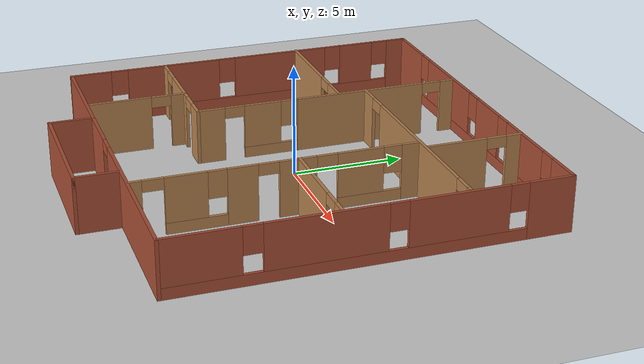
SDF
<sdf version="1.7">
 <world name="default">
  <model name="ground_plane">
   <static>1</static>
   <link name="link">
    <collision name="collision">
     <geometry><plane><normal>0 0 1</normal><size>100 100</size></plane></geometry>
     <surface>
      <contact><collide_bitmask>65535</collide_bitmask></contact>
      <friction><ode><mu>100</mu><mu2>50</mu2></ode></friction>
     </surface>
    </collision>
    <visual name="visual">
     <cast_shadows>0</cast_shadows>
     <geometry><plane><normal>0 0 1</normal><size>100 100</size></plane></geometry>
     <material>
      <script><uri>file://media/materials/scripts/gazebo.material</uri><name>Gazebo/Grey</name></script>
     </material>
    </visual>
   </link>
  </model>
  <model name="floor_world">
   <pose>0.06506 -0.674263 0 0 -0 0</pose>
   <link name="Wall_10">
    <collision name="Wall_10_Collision">
     <geometry><box><size>2 0.15 2.5</size></box></geometry>
     <pose>0 0 1.25 0 -0 0</pose>
    </collision>
    <visual name="Wall_10_Visual">
     <pose>0 0 1.25 0 -0 0</pose>
     <geometry><box><size>2 0.15 2.5</size></box></geometry>
     <material>
      <script><uri>file://media/materials/scripts/gazebo.material</uri><name>Gazebo/Bricks</name></script>
      <ambient>1 1 1 1</ambient>
     </material>
     <meta><layer>0</layer></meta>
    </visual>
    <pose>-3.28762 -8.41095 0 0 -0 -1.5708</pose>
   </link>
   <link name="Wall_11">
    <collision name="Wall_11_Collision">
     <geometry><box><size>6 0.15 2.5</size></box></geometry>
     <pose>0 0 1.25 0 -0 0</pose>
    </collision>
    <visual name="Wall_11_Visual">
     <pose>0 0 1.25 0 -0 0</pose>
     <geometry><box><size>6 0.15 2.5</size></box></geometry>
     <material>
      <script><uri>file://media/materials/scripts/gazebo.material</uri><name>Gazebo/Bricks</name></script>
      <ambient>1 1 1 1</ambient>
     </material>
     <meta><layer>0</layer></meta>
    </visual>
    <pose>-0.362616 -9.37641 0 0 -0 0</pose>
   </link>
   <link name="Wall_12">
    <collision name="Wall_12_Collision">
     <geometry><box><size>1.89729 0.15 2.5</size></box></geometry>
     <pose>0 0 1.25 0 -0 0</pose>
    </collision>
    <visual name="Wall_12_Visual">
     <pose>0 0 1.25 0 -0 0</pose>
     <geometry><box><size>1.89729 0.15 2.5</size></box></geometry>
     <material>
      <script><uri>file://media/materials/scripts/gazebo.material</uri><name>Gazebo/Bricks</name></script>
      <ambient>1 1 1 1</ambient>
     </material>
     <meta><layer>0</layer></meta>
    </visual>
    <pose>2.56238 -8.46231 0 0 -0 1.5708</pose>
   </link>
   <link name="Wall_14">
    <pose>-2.51896 3.19449 0 0 -0 -1.5708</pose>
    <visual name="Wall_14_Visual_0">
     <pose>-5.85089 0 1.25 0 -0 0</pose>
     <geometry><box><size>0.798212 0.15 2.5</size></box></geometry>
     <material>
      <script><uri>file://media/materials/scripts/gazebo.material</uri><name>Gazebo/Wood</name></script>
      <ambient>1 1 1 1</ambient>
     </material>
     <meta><layer>0</layer></meta>
    </visual>
    <collision name="Wall_14_Collision_0">
     <geometry><box><size>0.798212 0.15 2.5</size></box></geometry>
     <pose>-5.85089 0 1.25 0 -0 0</pose>
    </collision>
    <visual name="Wall_14_Visual_1">
     <pose>-1.50357 0 1.25 0 -0 0</pose>
     <geometry><box><size>6.09644 0.15 2.5</size></box></geometry>
     <material>
      <script><uri>file://media/materials/scripts/gazebo.material</uri><name>Gazebo/Wood</name></script>
      <ambient>1 1 1 1</ambient>
     </material>
     <meta><layer>0</layer></meta>
    </visual>
    <collision name="Wall_14_Collision_1">
     <geometry><box><size>6.09644 0.15 2.5</size></box></geometry>
     <pose>-1.50357 0 1.25 0 -0 0</pose>
    </collision>
    <visual name="Wall_14_Visual_2">
     <pose>5.5981 0 1.25 0 -0 0</pose>
     <geometry><box><size>1.3038 0.15 2.5</size></box></geometry>
     <material>
      <script><uri>file://media/materials/scripts/gazebo.material</uri><name>Gazebo/Wood</name></script>
      <ambient>1 1 1 1</ambient>
     </material>
     <meta><layer>0</layer></meta>
    </visual>
    <collision name="Wall_14_Collision_2">
     <geometry><box><size>1.3038 0.15 2.5</size></box></geometry>
     <pose>5.5981 0 1.25 0 -0 0</pose>
    </collision>
    <visual name="Wall_14_Visual_3">
     <pose>2.79542 0 0.25 0 -0 0</pose>
     <geometry><box><size>2.50155 0.15 0.5</size></box></geometry>
     <material>
      <script><uri>file://media/materials/scripts/gazebo.material</uri><name>Gazebo/Wood</name></script>
      <ambient>1 1 1 1</ambient>
     </material>
     <meta><layer>0</layer></meta>
    </visual>
    <collision name="Wall_14_Collision_3">
     <geometry><box><size>2.50155 0.15 0.5</size></box></geometry>
     <pose>2.79542 0 0.25 0 -0 0</pose>
    </collision>
    <visual name="Wall_14_Visual_4">
     <pose>3.19543 0 1.5 0 -0 0</pose>
     <geometry><box><size>1.70155 0.15 2</size></box></geometry>
     <material>
      <script><uri>file://media/materials/scripts/gazebo.material</uri><name>Gazebo/Wood</name></script>
      <ambient>1 1 1 1</ambient>
     </material>
     <meta><layer>0</layer></meta>
    </visual>
    <collision name="Wall_14_Collision_4">
     <geometry><box><size>1.70155 0.15 2</size></box></geometry>
     <pose>3.19543 0 1.5 0 -0 0</pose>
    </collision>
    <visual name="Wall_14_Visual_5">
     <pose>1.94465 0 1.9 0 -0 0</pose>
     <geometry><box><size>0.8 0.15 1.2</size></box></geometry>
     <material>
      <script><uri>file://media/materials/scripts/gazebo.material</uri><name>Gazebo/Wood</name></script>
      <ambient>1 1 1 1</ambient>
     </material>
     <meta><layer>0</layer></meta>
    </visual>
    <collision name="Wall_14_Collision_5">
     <geometry><box><size>0.8 0.15 1.2</size></box></geometry>
     <pose>1.94465 0 1.9 0 -0 0</pose>
    </collision>
    <visual name="Wall_14_Visual_6">
     <pose>-5.00179 0 2.25 0 -0 0</pose>
     <geometry><box><size>0.9 0.15 0.5</size></box></geometry>
     <material>
      <script><uri>file://media/materials/scripts/gazebo.material</uri><name>Gazebo/Wood</name></script>
      <ambient>1 1 1 1</ambient>
     </material>
     <meta><layer>0</layer></meta>
    </visual>
    <collision name="Wall_14_Collision_6">
     <geometry><box><size>0.9 0.15 0.5</size></box></geometry>
     <pose>-5.00179 0 2.25 0 -0 0</pose>
    </collision>
    <visual name="Wall_14_Visual_7">
     <pose>4.4962 0 2.25 0 -0 0</pose>
     <geometry><box><size>0.9 0.15 0.5</size></box></geometry>
     <material>
      <script><uri>file://media/materials/scripts/gazebo.material</uri><name>Gazebo/Wood</name></script>
      <ambient>1 1 1 1</ambient>
     </material>
     <meta><layer>0</layer></meta>
    </visual>
    <collision name="Wall_14_Collision_7">
     <geometry><box><size>0.9 0.15 0.5</size></box></geometry>
     <pose>4.4962 0 2.25 0 -0 0</pose>
    </collision>
   </link>
   <link name="Wall_15">
    <pose>-5.56896 -2.98051 0 0 -0 3.14159</pose>
    <visual name="Wall_15_Visual_0">
     <pose>-2.61101 0 1.25 0 -0 0</pose>
     <geometry><box><size>1.02798 0.15 2.5</size></box></geometry>
     <material>
      <script><uri>file://media/materials/scripts/gazebo.material</uri><name>Gazebo/Wood</name></script>
      <ambient>1 1 1 1</ambient>
     </material>
     <meta><layer>0</layer></meta>
    </visual>
    <collision name="Wall_15_Collision_0">
     <geometry><box><size>1.02798 0.15 2.5</size></box></geometry>
     <pose>-2.61101 0 1.25 0 -0 0</pose>
    </collision>
    <visual name="Wall_15_Visual_1">
     <pose>0.099053 0 1.25 0 -0 0</pose>
     <geometry><box><size>2.59214 0.15 2.5</size></box></geometry>
     <material>
      <script><uri>file://media/materials/scripts/gazebo.material</uri><name>Gazebo/Wood</name></script>
      <ambient>1 1 1 1</ambient>
     </material>
     <meta><layer>0</layer></meta>
    </visual>
    <collision name="Wall_15_Collision_1">
     <geometry><box><size>2.59214 0.15 2.5</size></box></geometry>
     <pose>0.099053 0 1.25 0 -0 0</pose>
    </collision>
    <visual name="Wall_15_Visual_2">
     <pose>2.71006 0 1.25 0 -0 0</pose>
     <geometry><box><size>0.829875 0.15 2.5</size></box></geometry>
     <material>
      <script><uri>file://media/materials/scripts/gazebo.material</uri><name>Gazebo/Wood</name></script>
      <ambient>1 1 1 1</ambient>
     </material>
     <meta><layer>0</layer></meta>
    </visual>
    <collision name="Wall_15_Collision_2">
     <geometry><box><size>0.829875 0.15 2.5</size></box></geometry>
     <pose>2.71006 0 1.25 0 -0 0</pose>
    </collision>
    <visual name="Wall_15_Visual_3">
     <pose>-1.64702 0 2.25 0 -0 0</pose>
     <geometry><box><size>0.9 0.15 0.5</size></box></geometry>
     <material>
      <script><uri>file://media/materials/scripts/gazebo.material</uri><name>Gazebo/Wood</name></script>
      <ambient>1 1 1 1</ambient>
     </material>
     <meta><layer>0</layer></meta>
    </visual>
    <collision name="Wall_15_Collision_3">
     <geometry><box><size>0.9 0.15 0.5</size></box></geometry>
     <pose>-1.64702 0 2.25 0 -0 0</pose>
    </collision>
    <visual name="Wall_15_Visual_4">
     <pose>1.84512 0 2.25 0 -0 0</pose>
     <geometry><box><size>0.9 0.15 0.5</size></box></geometry>
     <material>
      <script><uri>file://media/materials/scripts/gazebo.material</uri><name>Gazebo/Wood</name></script>
      <ambient>1 1 1 1</ambient>
     </material>
     <meta><layer>0</layer></meta>
    </visual>
    <collision name="Wall_15_Collision_4">
     <geometry><box><size>0.9 0.15 0.5</size></box></geometry>
     <pose>1.84512 0 2.25 0 -0 0</pose>
    </collision>
   </link>
   <link name="Wall_17">
    <pose>2.99058 4.95983 0 0 -0 0</pose>
    <visual name="Wall_17_Visual_0">
     <pose>-5.05152 0 1.25 0 -0 0</pose>
     <geometry><box><size>1.14696 0.15 2.5</size></box></geometry>
     <material>
      <script><uri>file://media/materials/scripts/gazebo.material</uri><name>Gazebo/Wood</name></script>
      <ambient>1 1 1 1</ambient>
     </material>
     <meta><layer>0</layer></meta>
    </visual>
    <collision name="Wall_17_Collision_0">
     <geometry><box><size>1.14696 0.15 2.5</size></box></geometry>
     <pose>-5.05152 0 1.25 0 -0 0</pose>
    </collision>
    <visual name="Wall_17_Visual_1">
     <pose>0.449976 0 1.25 0 -0 0</pose>
     <geometry><box><size>8.05604 0.15 2.5</size></box></geometry>
     <material>
      <script><uri>file://media/materials/scripts/gazebo.material</uri><name>Gazebo/Wood</name></script>
      <ambient>1 1 1 1</ambient>
     </material>
     <meta><layer>0</layer></meta>
    </visual>
    <collision name="Wall_17_Collision_1">
     <geometry><box><size>8.05604 0.15 2.5</size></box></geometry>
     <pose>0.449976 0 1.25 0 -0 0</pose>
    </collision>
    <visual name="Wall_17_Visual_2">
     <pose>5.5015 0 1.25 0 -0 0</pose>
     <geometry><box><size>0.247005 0.15 2.5</size></box></geometry>
     <material>
      <script><uri>file://media/materials/scripts/gazebo.material</uri><name>Gazebo/Wood</name></script>
      <ambient>1 1 1 1</ambient>
     </material>
     <meta><layer>0</layer></meta>
    </visual>
    <collision name="Wall_17_Collision_2">
     <geometry><box><size>0.247005 0.15 2.5</size></box></geometry>
     <pose>5.5015 0 1.25 0 -0 0</pose>
    </collision>
    <visual name="Wall_17_Visual_3">
     <pose>-4.02804 0 2.25 0 -0 0</pose>
     <geometry><box><size>0.9 0.15 0.5</size></box></geometry>
     <material>
      <script><uri>file://media/materials/scripts/gazebo.material</uri><name>Gazebo/Wood</name></script>
      <ambient>1 1 1 1</ambient>
     </material>
     <meta><layer>0</layer></meta>
    </visual>
    <collision name="Wall_17_Collision_3">
     <geometry><box><size>0.9 0.15 0.5</size></box></geometry>
     <pose>-4.02804 0 2.25 0 -0 0</pose>
    </collision>
    <visual name="Wall_17_Visual_4">
     <pose>4.928 0 2.25 0 -0 0</pose>
     <geometry><box><size>0.9 0.15 0.5</size></box></geometry>
     <material>
      <script><uri>file://media/materials/scripts/gazebo.material</uri><name>Gazebo/Wood</name></script>
      <ambient>1 1 1 1</ambient>
     </material>
     <meta><layer>0</layer></meta>
    </visual>
    <collision name="Wall_17_Collision_4">
     <geometry><box><size>0.9 0.15 0.5</size></box></geometry>
     <pose>4.928 0 2.25 0 -0 0</pose>
    </collision>
   </link>
   <link name="Wall_19">
    <pose>3.7112 -1.21517 0 0 -0 -1.5708</pose>
    <visual name="Wall_19_Visual_0">
     <pose>-5.79039 0 1.25 0 -0 0</pose>
     <geometry><box><size>0.919224 0.15 2.5</size></box></geometry>
     <material>
      <script><uri>file://media/materials/scripts/gazebo.material</uri><name>Gazebo/Wood</name></script>
      <ambient>1 1 1 1</ambient>
     </material>
     <meta><layer>0</layer></meta>
    </visual>
    <collision name="Wall_19_Collision_0">
     <geometry><box><size>0.919224 0.15 2.5</size></box></geometry>
     <pose>-5.79039 0 1.25 0 -0 0</pose>
    </collision>
    <visual name="Wall_19_Visual_1">
     <pose>-0.794408 0 1.25 0 -0 0</pose>
     <geometry><box><size>1.60825 0.15 2.5</size></box></geometry>
     <material>
      <script><uri>file://media/materials/scripts/gazebo.material</uri><name>Gazebo/Wood</name></script>
      <ambient>1 1 1 1</ambient>
     </material>
     <meta><layer>0</layer></meta>
    </visual>
    <collision name="Wall_19_Collision_1">
     <geometry><box><size>1.60825 0.15 2.5</size></box></geometry>
     <pose>-0.794408 0 1.25 0 -0 0</pose>
    </collision>
    <visual name="Wall_19_Visual_2">
     <pose>1.55791 0 1.25 0 -0 0</pose>
     <geometry><box><size>1.29638 0.15 2.5</size></box></geometry>
     <material>
      <script><uri>file://media/materials/scripts/gazebo.material</uri><name>Gazebo/Wood</name></script>
      <ambient>1 1 1 1</ambient>
     </material>
     <meta><layer>0</layer></meta>
    </visual>
    <collision name="Wall_19_Collision_2">
     <geometry><box><size>1.29638 0.15 2.5</size></box></geometry>
     <pose>1.55791 0 1.25 0 -0 0</pose>
    </collision>
    <visual name="Wall_19_Visual_3">
     <pose>5.96674 0 1.25 0 -0 0</pose>
     <geometry><box><size>0.566527 0.15 2.5</size></box></geometry>
     <material>
      <script><uri>file://media/materials/scripts/gazebo.material</uri><name>Gazebo/Wood</name></script>
      <ambient>1 1 1 1</ambient>
     </material>
     <meta><layer>0</layer></meta>
    </visual>
    <collision name="Wall_19_Collision_3">
     <geometry><box><size>0.566527 0.15 2.5</size></box></geometry>
     <pose>5.96674 0 1.25 0 -0 0</pose>
    </collision>
    <visual name="Wall_19_Visual_4">
     <pose>-3.91465 0 0.25 0 -0 0</pose>
     <geometry><box><size>2.83224 0.15 0.5</size></box></geometry>
     <material>
      <script><uri>file://media/materials/scripts/gazebo.material</uri><name>Gazebo/Wood</name></script>
      <ambient>1 1 1 1</ambient>
     </material>
     <meta><layer>0</layer></meta>
    </visual>
    <collision name="Wall_19_Collision_4">
     <geometry><box><size>2.83224 0.15 0.5</size></box></geometry>
     <pose>-3.91465 0 0.25 0 -0 0</pose>
    </collision>
    <visual name="Wall_19_Visual_5">
     <pose>3.49478 0 0.25 0 -0 0</pose>
     <geometry><box><size>2.57737 0.15 0.5</size></box></geometry>
     <material>
      <script><uri>file://media/materials/scripts/gazebo.material</uri><name>Gazebo/Wood</name></script>
      <ambient>1 1 1 1</ambient>
     </material>
     <meta><layer>0</layer></meta>
    </visual>
    <collision name="Wall_19_Collision_5">
     <geometry><box><size>2.57737 0.15 0.5</size></box></geometry>
     <pose>3.49478 0 0.25 0 -0 0</pose>
    </collision>
    <visual name="Wall_19_Visual_6">
     <pose>-3.51465 0 1.5 0 -0 0</pose>
     <geometry><box><size>2.03224 0.15 2</size></box></geometry>
     <material>
      <script><uri>file://media/materials/scripts/gazebo.material</uri><name>Gazebo/Wood</name></script>
      <ambient>1 1 1 1</ambient>
     </material>
     <meta><layer>0</layer></meta>
    </visual>
    <collision name="Wall_19_Collision_6">
     <geometry><box><size>2.03224 0.15 2</size></box></geometry>
     <pose>-3.51465 0 1.5 0 -0 0</pose>
    </collision>
    <visual name="Wall_19_Visual_7">
     <pose>-3.51465 0 1.5 0 -0 0</pose>
     <geometry><box><size>2.03224 0.15 2</size></box></geometry>
     <material>
      <script><uri>file://media/materials/scripts/gazebo.material</uri><name>Gazebo/Wood</name></script>
      <ambient>1 1 1 1</ambient>
     </material>
     <meta><layer>0</layer></meta>
    </visual>
    <collision name="Wall_19_Collision_7">
     <geometry><box><size>2.03224 0.15 2</size></box></geometry>
     <pose>-3.51465 0 1.5 0 -0 0</pose>
    </collision>
    <visual name="Wall_19_Visual_8">
     <pose>3.89479 0 1.5 0 -0 0</pose>
     <geometry><box><size>1.77737 0.15 2</size></box></geometry>
     <material>
      <script><uri>file://media/materials/scripts/gazebo.material</uri><name>Gazebo/Wood</name></script>
      <ambient>1 1 1 1</ambient>
     </material>
     <meta><layer>0</layer></meta>
    </visual>
    <collision name="Wall_19_Collision_8">
     <geometry><box><size>1.77737 0.15 2</size></box></geometry>
     <pose>3.89479 0 1.5 0 -0 0</pose>
    </collision>
    <visual name="Wall_19_Visual_9">
     <pose>-4.93078 0 1.9 0 -0 0</pose>
     <geometry><box><size>0.8 0.15 1.2</size></box></geometry>
     <material>
      <script><uri>file://media/materials/scripts/gazebo.material</uri><name>Gazebo/Wood</name></script>
      <ambient>1 1 1 1</ambient>
     </material>
     <meta><layer>0</layer></meta>
    </visual>
    <collision name="Wall_19_Collision_9">
     <geometry><box><size>0.8 0.15 1.2</size></box></geometry>
     <pose>-4.93078 0 1.9 0 -0 0</pose>
    </collision>
    <visual name="Wall_19_Visual_10">
     <pose>2.6061 0 1.9 0 -0 0</pose>
     <geometry><box><size>0.8 0.15 1.2</size></box></geometry>
     <material>
      <script><uri>file://media/materials/scripts/gazebo.material</uri><name>Gazebo/Wood</name></script>
      <ambient>1 1 1 1</ambient>
     </material>
     <meta><layer>0</layer></meta>
    </visual>
    <collision name="Wall_19_Collision_10">
     <geometry><box><size>0.8 0.15 1.2</size></box></geometry>
     <pose>2.6061 0 1.9 0 -0 0</pose>
    </collision>
    <visual name="Wall_19_Visual_11">
     <pose>0.459715 0 2.25 0 -0 0</pose>
     <geometry><box><size>0.9 0.15 0.5</size></box></geometry>
     <material>
      <script><uri>file://media/materials/scripts/gazebo.material</uri><name>Gazebo/Wood</name></script>
      <ambient>1 1 1 1</ambient>
     </material>
     <meta><layer>0</layer></meta>
    </visual>
    <collision name="Wall_19_Collision_11">
     <geometry><box><size>0.9 0.15 0.5</size></box></geometry>
     <pose>0.459715 0 2.25 0 -0 0</pose>
    </collision>
    <visual name="Wall_19_Visual_12">
     <pose>-2.04853 0 2.25 0 -0 0</pose>
     <geometry><box><size>0.9 0.15 0.5</size></box></geometry>
     <material>
      <script><uri>file://media/materials/scripts/gazebo.material</uri><name>Gazebo/Wood</name></script>
      <ambient>1 1 1 1</ambient>
     </material>
     <meta><layer>0</layer></meta>
    </visual>
    <collision name="Wall_19_Collision_12">
     <geometry><box><size>0.9 0.15 0.5</size></box></geometry>
     <pose>-2.04853 0 2.25 0 -0 0</pose>
    </collision>
    <visual name="Wall_19_Visual_13">
     <pose>-2.04853 0 2.25 0 -0 0</pose>
     <geometry><box><size>0.9 0.15 0.5</size></box></geometry>
     <material>
      <script><uri>file://media/materials/scripts/gazebo.material</uri><name>Gazebo/Wood</name></script>
      <ambient>1 1 1 1</ambient>
     </material>
     <meta><layer>0</layer></meta>
    </visual>
    <collision name="Wall_19_Collision_13">
     <geometry><box><size>0.9 0.15 0.5</size></box></geometry>
     <pose>-2.04853 0 2.25 0 -0 0</pose>
    </collision>
    <visual name="Wall_19_Visual_14">
     <pose>5.23347 0 2.25 0 -0 0</pose>
     <geometry><box><size>0.9 0.15 0.5</size></box></geometry>
     <material>
      <script><uri>file://media/materials/scripts/gazebo.material</uri><name>Gazebo/Wood</name></script>
      <ambient>1 1 1 1</ambient>
     </material>
     <meta><layer>0</layer></meta>
    </visual>
    <collision name="Wall_19_Collision_14">
     <geometry><box><size>0.9 0.15 0.5</size></box></geometry>
     <pose>5.23347 0 2.25 0 -0 0</pose>
    </collision>
   </link>
   <link name="Wall_21">
    <pose>-4.82493 -5.14446 0 0 -0 -1.5708</pose>
    <visual name="Wall_21_Visual_0">
     <pose>-1.87203 0 1.25 0 -0 0</pose>
     <geometry><box><size>0.755949 0.15 2.5</size></box></geometry>
     <material>
      <script><uri>file://media/materials/scripts/gazebo.material</uri><name>Gazebo/Wood</name></script>
      <ambient>1 1 1 1</ambient>
     </material>
     <meta><layer>0</layer></meta>
    </visual>
    <collision name="Wall_21_Collision_0">
     <geometry><box><size>0.755949 0.15 2.5</size></box></geometry>
     <pose>-1.87203 0 1.25 0 -0 0</pose>
    </collision>
    <visual name="Wall_21_Visual_1">
     <pose>0.827974 0 1.25 0 -0 0</pose>
     <geometry><box><size>2.84405 0.15 2.5</size></box></geometry>
     <material>
      <script><uri>file://media/materials/scripts/gazebo.material</uri><name>Gazebo/Wood</name></script>
      <ambient>1 1 1 1</ambient>
     </material>
     <meta><layer>0</layer></meta>
    </visual>
    <collision name="Wall_21_Collision_1">
     <geometry><box><size>2.84405 0.15 2.5</size></box></geometry>
     <pose>0.827974 0 1.25 0 -0 0</pose>
    </collision>
    <visual name="Wall_21_Visual_2">
     <pose>-1.04405 0 2.25 0 -0 0</pose>
     <geometry><box><size>0.9 0.15 0.5</size></box></geometry>
     <material>
      <script><uri>file://media/materials/scripts/gazebo.material</uri><name>Gazebo/Wood</name></script>
      <ambient>1 1 1 1</ambient>
     </material>
     <meta><layer>0</layer></meta>
    </visual>
    <collision name="Wall_21_Collision_2">
     <geometry><box><size>0.9 0.15 0.5</size></box></geometry>
     <pose>-1.04405 0 2.25 0 -0 0</pose>
    </collision>
   </link>
   <link name="Wall_23">
    <pose>-5.65866 3.66526 0 0 -0 0</pose>
    <visual name="Wall_23_Visual_0">
     <pose>-1.10767 0 1.25 0 -0 0</pose>
     <geometry><box><size>4.03466 0.15 2.5</size></box></geometry>
     <material>
      <script><uri>file://media/materials/scripts/gazebo.material</uri><name>Gazebo/Wood</name></script>
      <ambient>1 1 1 1</ambient>
     </material>
     <meta><layer>0</layer></meta>
    </visual>
    <collision name="Wall_23_Collision_0">
     <geometry><box><size>4.03466 0.15 2.5</size></box></geometry>
     <pose>-1.10767 0 1.25 0 -0 0</pose>
    </collision>
    <visual name="Wall_23_Visual_1">
     <pose>2.46733 0 1.25 0 -0 0</pose>
     <geometry><box><size>1.31534 0.15 2.5</size></box></geometry>
     <material>
      <script><uri>file://media/materials/scripts/gazebo.material</uri><name>Gazebo/Wood</name></script>
      <ambient>1 1 1 1</ambient>
     </material>
     <meta><layer>0</layer></meta>
    </visual>
    <collision name="Wall_23_Collision_1">
     <geometry><box><size>1.31534 0.15 2.5</size></box></geometry>
     <pose>2.46733 0 1.25 0 -0 0</pose>
    </collision>
    <visual name="Wall_23_Visual_2">
     <pose>1.35966 0 2.25 0 -0 0</pose>
     <geometry><box><size>0.9 0.15 0.5</size></box></geometry>
     <material>
      <script><uri>file://media/materials/scripts/gazebo.material</uri><name>Gazebo/Wood</name></script>
      <ambient>1 1 1 1</ambient>
     </material>
     <meta><layer>0</layer></meta>
    </visual>
    <collision name="Wall_23_Collision_2">
     <geometry><box><size>0.9 0.15 0.5</size></box></geometry>
     <pose>1.35966 0 2.25 0 -0 0</pose>
    </collision>
   </link>
   <link name="Wall_25">
    <pose>6.1362 -0.339847 0 0 -0 0</pose>
    <visual name="Wall_25_Visual_0">
     <pose>-0.786088 0 1.25 0 -0 0</pose>
     <geometry><box><size>3.42782 0.15 2.5</size></box></geometry>
     <material>
      <script><uri>file://media/materials/scripts/gazebo.material</uri><name>Gazebo/Wood</name></script>
      <ambient>1 1 1 1</ambient>
     </material>
     <meta><layer>0</layer></meta>
    </visual>
    <collision name="Wall_25_Collision_0">
     <geometry><box><size>3.42782 0.15 2.5</size></box></geometry>
     <pose>-0.786088 0 1.25 0 -0 0</pose>
    </collision>
    <visual name="Wall_25_Visual_1">
     <pose>2.16391 0 1.25 0 -0 0</pose>
     <geometry><box><size>0.672176 0.15 2.5</size></box></geometry>
     <material>
      <script><uri>file://media/materials/scripts/gazebo.material</uri><name>Gazebo/Wood</name></script>
      <ambient>1 1 1 1</ambient>
     </material>
     <meta><layer>0</layer></meta>
    </visual>
    <collision name="Wall_25_Collision_1">
     <geometry><box><size>0.672176 0.15 2.5</size></box></geometry>
     <pose>2.16391 0 1.25 0 -0 0</pose>
    </collision>
    <visual name="Wall_25_Visual_2">
     <pose>1.37782 0 2.25 0 -0 0</pose>
     <geometry><box><size>0.9 0.15 0.5</size></box></geometry>
     <material>
      <script><uri>file://media/materials/scripts/gazebo.material</uri><name>Gazebo/Wood</name></script>
      <ambient>1 1 1 1</ambient>
     </material>
     <meta><layer>0</layer></meta>
    </visual>
    <collision name="Wall_25_Collision_2">
     <geometry><box><size>0.9 0.15 0.5</size></box></geometry>
     <pose>1.37782 0 2.25 0 -0 0</pose>
    </collision>
   </link>
   <link name="Wall_27">
    <pose>4.27758 7.15404 0 0 -0 -1.5708</pose>
    <visual name="Wall_27_Visual_0">
     <pose>-1.87112 0 1.25 0 -0 0</pose>
     <geometry><box><size>0.757756 0.15 2.5</size></box></geometry>
     <material>
      <script><uri>file://media/materials/scripts/gazebo.material</uri><name>Gazebo/Wood</name></script>
      <ambient>1 1 1 1</ambient>
     </material>
     <meta><layer>0</layer></meta>
    </visual>
    <collision name="Wall_27_Collision_0">
     <geometry><box><size>0.757756 0.15 2.5</size></box></geometry>
     <pose>-1.87112 0 1.25 0 -0 0</pose>
    </collision>
    <visual name="Wall_27_Visual_1">
     <pose>0.828878 0 1.25 0 -0 0</pose>
     <geometry><box><size>2.84224 0.15 2.5</size></box></geometry>
     <material>
      <script><uri>file://media/materials/scripts/gazebo.material</uri><name>Gazebo/Wood</name></script>
      <ambient>1 1 1 1</ambient>
     </material>
     <meta><layer>0</layer></meta>
    </visual>
    <collision name="Wall_27_Collision_1">
     <geometry><box><size>2.84224 0.15 2.5</size></box></geometry>
     <pose>0.828878 0 1.25 0 -0 0</pose>
    </collision>
    <visual name="Wall_27_Visual_2">
     <pose>-1.04224 0 2.25 0 -0 0</pose>
     <geometry><box><size>0.9 0.15 0.5</size></box></geometry>
     <material>
      <script><uri>file://media/materials/scripts/gazebo.material</uri><name>Gazebo/Wood</name></script>
      <ambient>1 1 1 1</ambient>
     </material>
     <meta><layer>0</layer></meta>
    </visual>
    <collision name="Wall_27_Collision_2">
     <geometry><box><size>0.9 0.15 0.5</size></box></geometry>
     <pose>-1.04224 0 2.25 0 -0 0</pose>
    </collision>
   </link>
   <link name="Wall_4">
    <pose>-8.64134 0.951405 0 0 -0 -1.5708</pose>
    <visual name="Wall_4_Visual_0">
     <pose>-7.99546 0 1.25 0 -0 0</pose>
     <geometry><box><size>1.00907 0.15 2.5</size></box></geometry>
     <material>
      <script><uri>file://media/materials/scripts/gazebo.material</uri><name>Gazebo/Bricks</name></script>
      <ambient>1 1 1 1</ambient>
     </material>
     <meta><layer>0</layer></meta>
    </visual>
    <collision name="Wall_4_Collision_0">
     <geometry><box><size>1.00907 0.15 2.5</size></box></geometry>
     <pose>-7.99546 0 1.25 0 -0 0</pose>
    </collision>
    <visual name="Wall_4_Visual_1">
     <pose>0.504536 0 0.25 0 -0 0</pose>
     <geometry><box><size>15.9909 0.15 0.5</size></box></geometry>
     <material>
      <script><uri>file://media/materials/scripts/gazebo.material</uri><name>Gazebo/Bricks</name></script>
      <ambient>1 1 1 1</ambient>
     </material>
     <meta><layer>0</layer></meta>
    </visual>
    <collision name="Wall_4_Collision_1">
     <geometry><box><size>15.9909 0.15 0.5</size></box></geometry>
     <pose>0.504536 0 0.25 0 -0 0</pose>
    </collision>
    <visual name="Wall_4_Visual_2">
     <pose>-5.83478 0 1.5 0 -0 0</pose>
     <geometry><box><size>1.71229 0.15 2</size></box></geometry>
     <material>
      <script><uri>file://media/materials/scripts/gazebo.material</uri><name>Gazebo/Bricks</name></script>
      <ambient>1 1 1 1</ambient>
     </material>
     <meta><layer>0</layer></meta>
    </visual>
    <collision name="Wall_4_Collision_2">
     <geometry><box><size>1.71229 0.15 2</size></box></geometry>
     <pose>-5.83478 0 1.5 0 -0 0</pose>
    </collision>
    <visual name="Wall_4_Visual_3">
     <pose>-1.85699 0 1.5 0 -0 0</pose>
     <geometry><box><size>4.6433 0.15 2</size></box></geometry>
     <material>
      <script><uri>file://media/materials/scripts/gazebo.material</uri><name>Gazebo/Bricks</name></script>
      <ambient>1 1 1 1</ambient>
     </material>
     <meta><layer>0</layer></meta>
    </visual>
    <collision name="Wall_4_Collision_3">
     <geometry><box><size>4.6433 0.15 2</size></box></geometry>
     <pose>-1.85699 0 1.5 0 -0 0</pose>
    </collision>
    <visual name="Wall_4_Visual_4">
     <pose>3.51652 0 1.5 0 -0 0</pose>
     <geometry><box><size>4.50373 0.15 2</size></box></geometry>
     <material>
      <script><uri>file://media/materials/scripts/gazebo.material</uri><name>Gazebo/Bricks</name></script>
      <ambient>1 1 1 1</ambient>
     </material>
     <meta><layer>0</layer></meta>
    </visual>
    <collision name="Wall_4_Collision_4">
     <geometry><box><size>4.50373 0.15 2</size></box></geometry>
     <pose>3.51652 0 1.5 0 -0 0</pose>
    </collision>
    <visual name="Wall_4_Visual_5">
     <pose>7.53419 0 1.5 0 -0 0</pose>
     <geometry><box><size>1.93161 0.15 2</size></box></geometry>
     <material>
      <script><uri>file://media/materials/scripts/gazebo.material</uri><name>Gazebo/Bricks</name></script>
      <ambient>1 1 1 1</ambient>
     </material>
     <meta><layer>0</layer></meta>
    </visual>
    <collision name="Wall_4_Collision_5">
     <geometry><box><size>1.93161 0.15 2</size></box></geometry>
     <pose>7.53419 0 1.5 0 -0 0</pose>
    </collision>
    <visual name="Wall_4_Visual_6">
     <pose>-7.09093 0 1.9 0 -0 0</pose>
     <geometry><box><size>0.8 0.15 1.2</size></box></geometry>
     <material>
      <script><uri>file://media/materials/scripts/gazebo.material</uri><name>Gazebo/Bricks</name></script>
      <ambient>1 1 1 1</ambient>
     </material>
     <meta><layer>0</layer></meta>
    </visual>
    <collision name="Wall_4_Collision_6">
     <geometry><box><size>0.8 0.15 1.2</size></box></geometry>
     <pose>-7.09093 0 1.9 0 -0 0</pose>
    </collision>
    <visual name="Wall_4_Visual_7">
     <pose>-4.57864 0 1.9 0 -0 0</pose>
     <geometry><box><size>0.8 0.15 1.2</size></box></geometry>
     <material>
      <script><uri>file://media/materials/scripts/gazebo.material</uri><name>Gazebo/Bricks</name></script>
      <ambient>1 1 1 1</ambient>
     </material>
     <meta><layer>0</layer></meta>
    </visual>
    <collision name="Wall_4_Collision_7">
     <geometry><box><size>0.8 0.15 1.2</size></box></geometry>
     <pose>-4.57864 0 1.9 0 -0 0</pose>
    </collision>
    <visual name="Wall_4_Visual_8">
     <pose>0.864661 0 1.9 0 -0 0</pose>
     <geometry><box><size>0.8 0.15 1.2</size></box></geometry>
     <material>
      <script><uri>file://media/materials/scripts/gazebo.material</uri><name>Gazebo/Bricks</name></script>
      <ambient>1 1 1 1</ambient>
     </material>
     <meta><layer>0</layer></meta>
    </visual>
    <collision name="Wall_4_Collision_8">
     <geometry><box><size>0.8 0.15 1.2</size></box></geometry>
     <pose>0.864661 0 1.9 0 -0 0</pose>
    </collision>
    <visual name="Wall_4_Visual_9">
     <pose>6.16839 0 1.9 0 -0 0</pose>
     <geometry><box><size>0.8 0.15 1.2</size></box></geometry>
     <material>
      <script><uri>file://media/materials/scripts/gazebo.material</uri><name>Gazebo/Bricks</name></script>
      <ambient>1 1 1 1</ambient>
     </material>
     <meta><layer>0</layer></meta>
    </visual>
    <collision name="Wall_4_Collision_9">
     <geometry><box><size>0.8 0.15 1.2</size></box></geometry>
     <pose>6.16839 0 1.9 0 -0 0</pose>
    </collision>
   </link>
   <link name="Wall_6">
    <pose>0.033661 9.37641 0 0 -0 0</pose>
    <visual name="Wall_6_Visual_0">
     <pose>-7.41349 0 1.25 0 -0 0</pose>
     <geometry><box><size>2.67301 0.15 2.5</size></box></geometry>
     <material>
      <script><uri>file://media/materials/scripts/gazebo.material</uri><name>Gazebo/Bricks</name></script>
      <ambient>1 1 1 1</ambient>
     </material>
     <meta><layer>0</layer></meta>
    </visual>
    <collision name="Wall_6_Collision_0">
     <geometry><box><size>2.67301 0.15 2.5</size></box></geometry>
     <pose>-7.41349 0 1.25 0 -0 0</pose>
    </collision>
    <visual name="Wall_6_Visual_1">
     <pose>1.33651 0 0.25 0 -0 0</pose>
     <geometry><box><size>14.827 0.15 0.5</size></box></geometry>
     <material>
      <script><uri>file://media/materials/scripts/gazebo.material</uri><name>Gazebo/Bricks</name></script>
      <ambient>1 1 1 1</ambient>
     </material>
     <meta><layer>0</layer></meta>
    </visual>
    <collision name="Wall_6_Collision_1">
     <geometry><box><size>14.827 0.15 0.5</size></box></geometry>
     <pose>1.33651 0 0.25 0 -0 0</pose>
    </collision>
    <visual name="Wall_6_Visual_2">
     <pose>-3.00186 0 1.5 0 -0 0</pose>
     <geometry><box><size>4.55025 0.15 2</size></box></geometry>
     <material>
      <script><uri>file://media/materials/scripts/gazebo.material</uri><name>Gazebo/Bricks</name></script>
      <ambient>1 1 1 1</ambient>
     </material>
     <meta><layer>0</layer></meta>
    </visual>
    <collision name="Wall_6_Collision_2">
     <geometry><box><size>4.55025 0.15 2</size></box></geometry>
     <pose>-3.00186 0 1.5 0 -0 0</pose>
    </collision>
    <visual name="Wall_6_Visual_3">
     <pose>1.13877 0 1.5 0 -0 0</pose>
     <geometry><box><size>2.13101 0.15 2</size></box></geometry>
     <material>
      <script><uri>file://media/materials/scripts/gazebo.material</uri><name>Gazebo/Bricks</name></script>
      <ambient>1 1 1 1</ambient>
     </material>
     <meta><layer>0</layer></meta>
    </visual>
    <collision name="Wall_6_Collision_3">
     <geometry><box><size>2.13101 0.15 2</size></box></geometry>
     <pose>1.13877 0 1.5 0 -0 0</pose>
    </collision>
    <visual name="Wall_6_Visual_4">
     <pose>4.6048 0 1.5 0 -0 0</pose>
     <geometry><box><size>3.20106 0.15 2</size></box></geometry>
     <material>
      <script><uri>file://media/materials/scripts/gazebo.material</uri><name>Gazebo/Bricks</name></script>
      <ambient>1 1 1 1</ambient>
     </material>
     <meta><layer>0</layer></meta>
    </visual>
    <collision name="Wall_6_Collision_4">
     <geometry><box><size>3.20106 0.15 2</size></box></geometry>
     <pose>4.6048 0 1.5 0 -0 0</pose>
    </collision>
    <visual name="Wall_6_Visual_5">
     <pose>7.87766 0 1.5 0 -0 0</pose>
     <geometry><box><size>1.74467 0.15 2</size></box></geometry>
     <material>
      <script><uri>file://media/materials/scripts/gazebo.material</uri><name>Gazebo/Bricks</name></script>
      <ambient>1 1 1 1</ambient>
     </material>
     <meta><layer>0</layer></meta>
    </visual>
    <collision name="Wall_6_Collision_5">
     <geometry><box><size>1.74467 0.15 2</size></box></geometry>
     <pose>7.87766 0 1.5 0 -0 0</pose>
    </collision>
    <visual name="Wall_6_Visual_6">
     <pose>-5.67699 0 1.9 0 -0 0</pose>
     <geometry><box><size>0.8 0.15 1.2</size></box></geometry>
     <material>
      <script><uri>file://media/materials/scripts/gazebo.material</uri><name>Gazebo/Bricks</name></script>
      <ambient>1 1 1 1</ambient>
     </material>
     <meta><layer>0</layer></meta>
    </visual>
    <collision name="Wall_6_Collision_6">
     <geometry><box><size>0.8 0.15 1.2</size></box></geometry>
     <pose>-5.67699 0 1.9 0 -0 0</pose>
    </collision>
    <visual name="Wall_6_Visual_7">
     <pose>-0.326737 0 1.9 0 -0 0</pose>
     <geometry><box><size>0.8 0.15 1.2</size></box></geometry>
     <material>
      <script><uri>file://media/materials/scripts/gazebo.material</uri><name>Gazebo/Bricks</name></script>
      <ambient>1 1 1 1</ambient>
     </material>
     <meta><layer>0</layer></meta>
    </visual>
    <collision name="Wall_6_Collision_7">
     <geometry><box><size>0.8 0.15 1.2</size></box></geometry>
     <pose>-0.326737 0 1.9 0 -0 0</pose>
    </collision>
    <visual name="Wall_6_Visual_8">
     <pose>2.60427 0 1.9 0 -0 0</pose>
     <geometry><box><size>0.8 0.15 1.2</size></box></geometry>
     <material>
      <script><uri>file://media/materials/scripts/gazebo.material</uri><name>Gazebo/Bricks</name></script>
      <ambient>1 1 1 1</ambient>
     </material>
     <meta><layer>0</layer></meta>
    </visual>
    <collision name="Wall_6_Collision_8">
     <geometry><box><size>0.8 0.15 1.2</size></box></geometry>
     <pose>2.60427 0 1.9 0 -0 0</pose>
    </collision>
    <visual name="Wall_6_Visual_9">
     <pose>6.60533 0 1.9 0 -0 0</pose>
     <geometry><box><size>0.8 0.15 1.2</size></box></geometry>
     <material>
      <script><uri>file://media/materials/scripts/gazebo.material</uri><name>Gazebo/Bricks</name></script>
      <ambient>1 1 1 1</ambient>
     </material>
     <meta><layer>0</layer></meta>
    </visual>
    <collision name="Wall_6_Collision_9">
     <geometry><box><size>0.8 0.15 1.2</size></box></geometry>
     <pose>6.60533 0 1.9 0 -0 0</pose>
    </collision>
   </link>
   <link name="Wall_7">
    <pose>8.70866 0.951405 0 0 -0 -1.5708</pose>
    <visual name="Wall_7_Visual_0">
     <pose>-7.4837 0 1.25 0 -0 0</pose>
     <geometry><box><size>2.0326 0.15 2.5</size></box></geometry>
     <material>
      <script><uri>file://media/materials/scripts/gazebo.material</uri><name>Gazebo/Bricks</name></script>
      <ambient>1 1 1 1</ambient>
     </material>
     <meta><layer>0</layer></meta>
    </visual>
    <collision name="Wall_7_Collision_0">
     <geometry><box><size>2.0326 0.15 2.5</size></box></geometry>
     <pose>-7.4837 0 1.25 0 -0 0</pose>
    </collision>
    <visual name="Wall_7_Visual_1">
     <pose>1.0163 0 0.25 0 -0 0</pose>
     <geometry><box><size>14.9674 0.15 0.5</size></box></geometry>
     <material>
      <script><uri>file://media/materials/scripts/gazebo.material</uri><name>Gazebo/Bricks</name></script>
      <ambient>1 1 1 1</ambient>
     </material>
     <meta><layer>0</layer></meta>
    </visual>
    <collision name="Wall_7_Collision_1">
     <geometry><box><size>14.9674 0.15 0.5</size></box></geometry>
     <pose>1.0163 0 0.25 0 -0 0</pose>
    </collision>
    <visual name="Wall_7_Visual_2">
     <pose>-3.53185 0 1.5 0 -0 0</pose>
     <geometry><box><size>4.27111 0.15 2</size></box></geometry>
     <material>
      <script><uri>file://media/materials/scripts/gazebo.material</uri><name>Gazebo/Bricks</name></script>
      <ambient>1 1 1 1</ambient>
     </material>
     <meta><layer>0</layer></meta>
    </visual>
    <collision name="Wall_7_Collision_2">
     <geometry><box><size>4.27111 0.15 2</size></box></geometry>
     <pose>-3.53185 0 1.5 0 -0 0</pose>
    </collision>
    <visual name="Wall_7_Visual_3">
     <pose>1.91145 0 1.5 0 -0 0</pose>
     <geometry><box><size>5.01549 0.15 2</size></box></geometry>
     <material>
      <script><uri>file://media/materials/scripts/gazebo.material</uri><name>Gazebo/Bricks</name></script>
      <ambient>1 1 1 1</ambient>
     </material>
     <meta><layer>0</layer></meta>
    </visual>
    <collision name="Wall_7_Collision_3">
     <geometry><box><size>5.01549 0.15 2</size></box></geometry>
     <pose>1.91145 0 1.5 0 -0 0</pose>
    </collision>
    <visual name="Wall_7_Visual_4">
     <pose>6.8596 0 1.5 0 -0 0</pose>
     <geometry><box><size>3.28081 0.15 2</size></box></geometry>
     <material>
      <script><uri>file://media/materials/scripts/gazebo.material</uri><name>Gazebo/Bricks</name></script>
      <ambient>1 1 1 1</ambient>
     </material>
     <meta><layer>0</layer></meta>
    </visual>
    <collision name="Wall_7_Collision_4">
     <geometry><box><size>3.28081 0.15 2</size></box></geometry>
     <pose>6.8596 0 1.5 0 -0 0</pose>
    </collision>
    <visual name="Wall_7_Visual_5">
     <pose>-6.0674 0 1.9 0 -0 0</pose>
     <geometry><box><size>0.8 0.15 1.2</size></box></geometry>
     <material>
      <script><uri>file://media/materials/scripts/gazebo.material</uri><name>Gazebo/Bricks</name></script>
      <ambient>1 1 1 1</ambient>
     </material>
     <meta><layer>0</layer></meta>
    </visual>
    <collision name="Wall_7_Collision_5">
     <geometry><box><size>0.8 0.15 1.2</size></box></geometry>
     <pose>-6.0674 0 1.9 0 -0 0</pose>
    </collision>
    <visual name="Wall_7_Visual_6">
     <pose>-0.996295 0 1.9 0 -0 0</pose>
     <geometry><box><size>0.8 0.15 1.2</size></box></geometry>
     <material>
      <script><uri>file://media/materials/scripts/gazebo.material</uri><name>Gazebo/Bricks</name></script>
      <ambient>1 1 1 1</ambient>
     </material>
     <meta><layer>0</layer></meta>
    </visual>
    <collision name="Wall_7_Collision_6">
     <geometry><box><size>0.8 0.15 1.2</size></box></geometry>
     <pose>-0.996295 0 1.9 0 -0 0</pose>
    </collision>
    <visual name="Wall_7_Visual_7">
     <pose>4.81919 0 1.9 0 -0 0</pose>
     <geometry><box><size>0.8 0.15 1.2</size></box></geometry>
     <material>
      <script><uri>file://media/materials/scripts/gazebo.material</uri><name>Gazebo/Bricks</name></script>
      <ambient>1 1 1 1</ambient>
     </material>
     <meta><layer>0</layer></meta>
    </visual>
    <collision name="Wall_7_Collision_7">
     <geometry><box><size>0.8 0.15 1.2</size></box></geometry>
     <pose>4.81919 0 1.9 0 -0 0</pose>
    </collision>
   </link>
   <link name="Wall_8">
    <pose>0.033661 -7.4736 0 0 -0 3.14159</pose>
    <visual name="Wall_8_Visual_0">
     <pose>-4.41599 0 1.25 0 -0 0</pose>
     <geometry><box><size>8.66802 0.15 2.5</size></box></geometry>
     <material>
      <script><uri>file://media/materials/scripts/gazebo.material</uri><name>Gazebo/Bricks</name></script>
      <ambient>1 1 1 1</ambient>
     </material>
     <meta><layer>0</layer></meta>
    </visual>
    <collision name="Wall_8_Collision_0">
     <geometry><box><size>8.66802 0.15 2.5</size></box></geometry>
     <pose>-4.41599 0 1.25 0 -0 0</pose>
    </collision>
    <visual name="Wall_8_Visual_1">
     <pose>4.78401 0 1.25 0 -0 0</pose>
     <geometry><box><size>7.93198 0.15 2.5</size></box></geometry>
     <material>
      <script><uri>file://media/materials/scripts/gazebo.material</uri><name>Gazebo/Bricks</name></script>
      <ambient>1 1 1 1</ambient>
     </material>
     <meta><layer>0</layer></meta>
    </visual>
    <collision name="Wall_8_Collision_1">
     <geometry><box><size>7.93198 0.15 2.5</size></box></geometry>
     <pose>4.78401 0 1.25 0 -0 0</pose>
    </collision>
    <visual name="Wall_8_Visual_2">
     <pose>0.36802 0 2.25 0 -0 0</pose>
     <geometry><box><size>0.9 0.15 0.5</size></box></geometry>
     <material>
      <script><uri>file://media/materials/scripts/gazebo.material</uri><name>Gazebo/Bricks</name></script>
      <ambient>1 1 1 1</ambient>
     </material>
     <meta><layer>0</layer></meta>
    </visual>
    <collision name="Wall_8_Collision_2">
     <geometry><box><size>0.9 0.15 0.5</size></box></geometry>
     <pose>0.36802 0 2.25 0 -0 0</pose>
    </collision>
   </link>
   <static>1</static>
  </model>
 </world>
</sdf>
